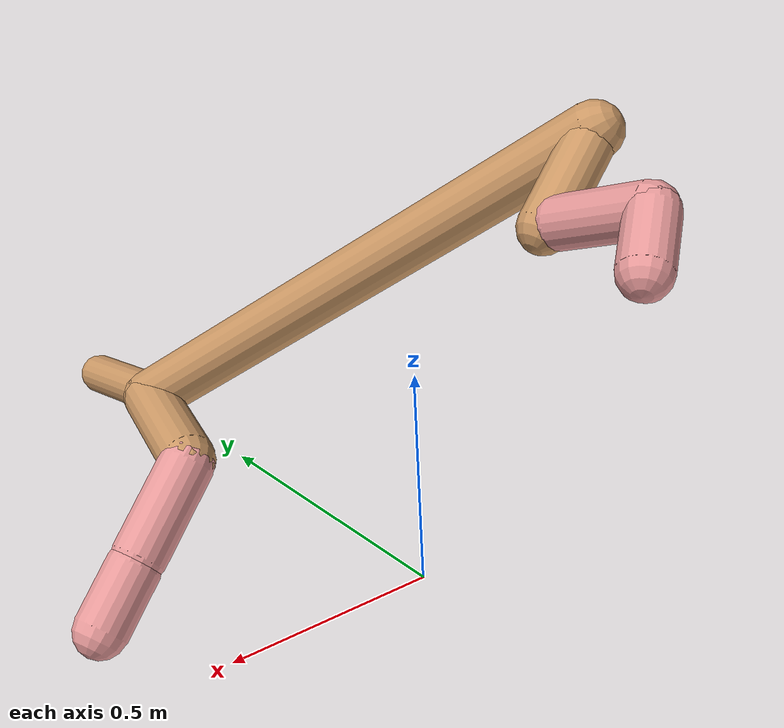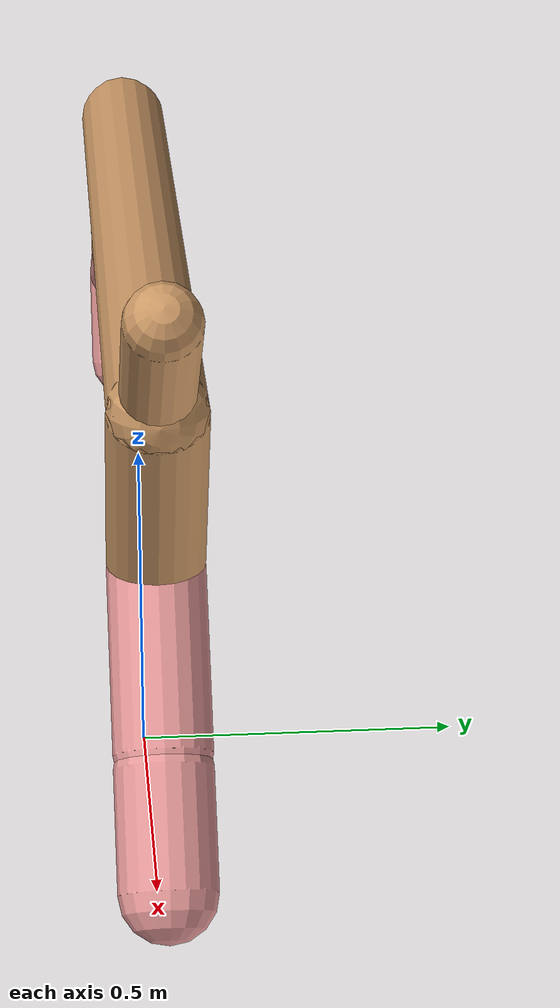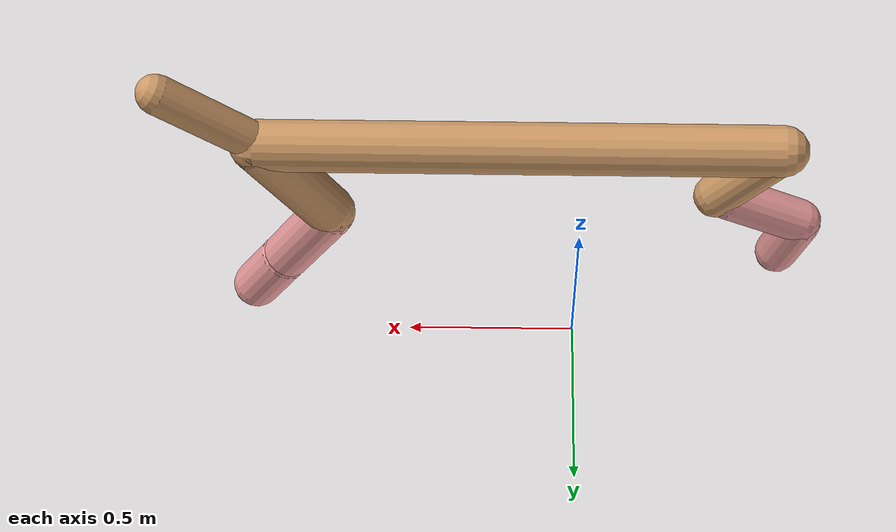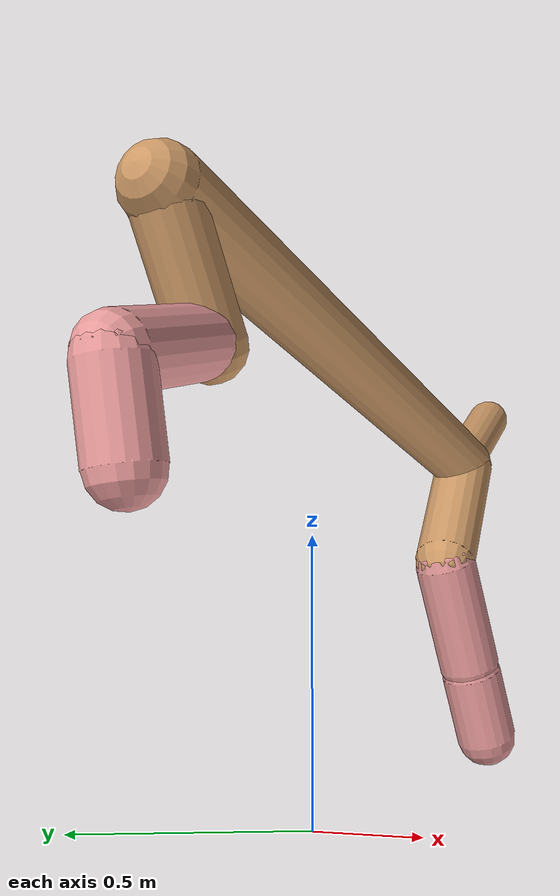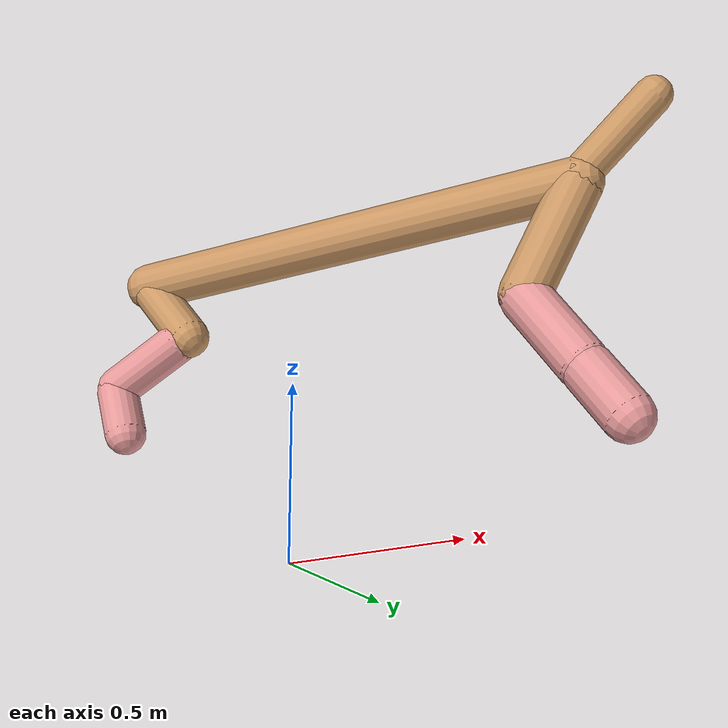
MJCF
<mujoco model="cheetah">
  <compiler angle="radian" coordinate="local" inertiafromgeom="true" settotalmass="14" />
  <default>
    <joint armature=".1" damping=".01" limited="true" solimplimit="0 .8 .03" solreflimit=".02 1" stiffness="8" />
    <geom conaffinity="0" condim="3" contype="1" friction="0.8 .1 .1" rgba="0.8 0.6 .4 1" solimp="0.0 0.8 0.01" solref="0.02 1" />
    <motor ctrllimited="true" ctrlrange="-1 1" />
  </default>
  <size nstack="300000" nuser_geom="1" />
  <option gravity="0 0 -9.81" timestep="0.01" />
  <worldbody>
    <body name="torso" pos="0.0 0.0 0.9008073206672286">
      <joint armature="0" axis="1 0 0" damping="0" limited="false" name="ignorex" pos="0 0 0" stiffness="0" type="slide" />
      <joint armature="0" axis="0 0 1" damping="0" limited="false" name="ignorez" pos="0 0 0" stiffness="0" type="slide" />
      <joint armature="0" axis="0 1 0" damping="0" limited="false" name="ignorey" pos="0 0 0" stiffness="0" type="hinge" />
      <geom fromto="-0.5 0.0 0.0 0.8488307556981167 0.0 0.0" name="torso" size="0.0671293002827776" type="capsule" />
      <geom axisangle="0 1 0 .87" name="head" pos="0.9488307556981167 0.0 0.1" size="0.05061148279077849 0.15" type="capsule" />

      <body name="bthigh" pos="-.5 0 0">
        <joint axis="0 1 0" damping="6" name="bthigh" pos="0 0 0" range="-.52 1.05" stiffness="240" type="hinge" />
        <geom axisangle="0 1 0 -3.8" name="bthigh" pos="0.0796871260983178 0.0 -0.10359326392781312" size="0.0591456326190222 0.11168440971359236" type="capsule" />
        <body name="bshin" pos="0.11937425219663557 0.0 -0.19718652785562624">
          <joint axis="0 1 0" damping="4.5" name="bshin" pos="0 0 0" range="-.785 .785" stiffness="180" type="hinge" />
          <geom axisangle="0 1 0 -2.03" name="bshin" pos="-0.10917410016926657 0.0 -0.054587050084633285" rgba="0.9 0.6 0.6 1" size="0.0591456326190222 0.11553559625544038" type="capsule" />
          <body name="bfoot" pos="-0.21834820033853314 0.0 -0.10917410016926657">
            <joint axis="0 1 0" damping="3" name="bfoot" pos="0 0 0" range="-.4 .785" stiffness="120" type="hinge" />
            <geom axisangle="0 1 0 -.27" name="bfoot" pos="0.023618535629616973 0.0 -0.07636659853576155" rgba="0.9 0.6 0.6 1" size="0.0591456326190222 0.07240230698674265" type="capsule" />
            <inertial mass="10" />
          </body>
        </body>
      </body>
      <body name="fthigh" pos="0.8488307556981167 0.0 0.0">
        <joint axis="0 1 0" damping="4.5" name="fthigh" pos="0 0 0" range="-1.5 0.8" stiffness="180" type="hinge" />
        <geom axisangle="0 1 0 .52" name="fthigh" pos="-0.08407643488435805 0.0 -0.14413103123032805" size="0.06816726472870442 0.16093658331458305" type="capsule" />
        <body name="fshin" pos="-0.1681528697687161 0.0 -0.2882620624606561">
          <joint axis="0 1 0" damping="3" name="fshin" pos="0 0 0" range="-1.2 1.1" stiffness="120" type="hinge" />
          <geom axisangle="0 1 0 -.6" name="fshin" pos="0.07803609171099005 0.0 -0.1080499731382939" rgba="0.9 0.6 0.6 1" size="0.06816726472870442 0.1282652468522241" type="capsule" />
          <body name="ffoot" pos="0.1560721834219801 0.0 -0.2160999462765878">
            <joint axis="0 1 0" damping="1.5" name="ffoot" pos="0 0 0" range="-3.1 -0.3" stiffness="60" type="hinge" />
            <geom axisangle="0 1 0 -.6" name="ffoot" pos="0.05295101026459095 0.0 -0.08236823818936372" rgba="0.9 0.6 0.6 1" size="0.06816726472870442 0.08470346490241214" type="capsule" />
            <inertial mass="10" />
          </body>
        </body>
      </body>
    </body>
  </worldbody>
  <actuator>
    <motor gear="120" joint="bthigh" name="bthigh" />
    <motor gear="90" joint="bshin" name="bshin" />
    <motor gear="60" joint="bfoot" name="bfoot" />
    <motor gear="120" joint="fthigh" name="fthigh" />
    <motor gear="60" joint="fshin" name="fshin" />
    <motor gear="30" joint="ffoot" name="ffoot" />
  </actuator>
</mujoco>
